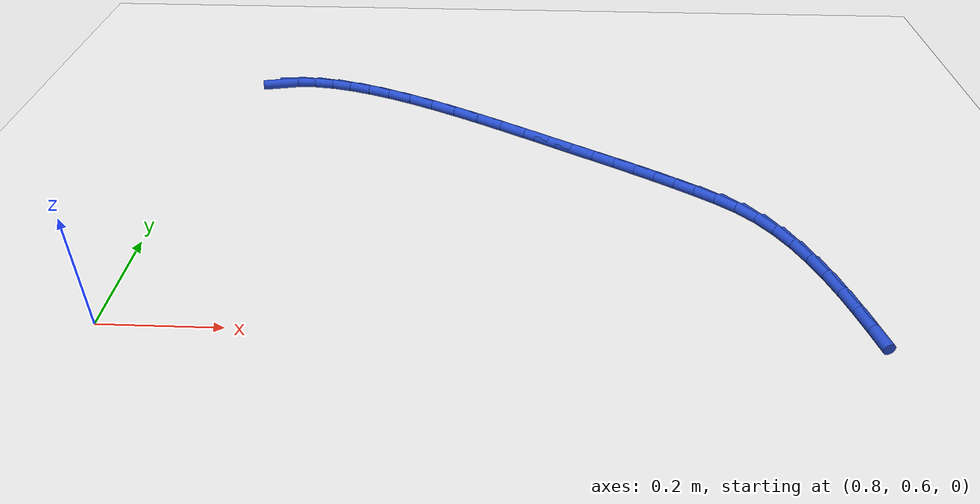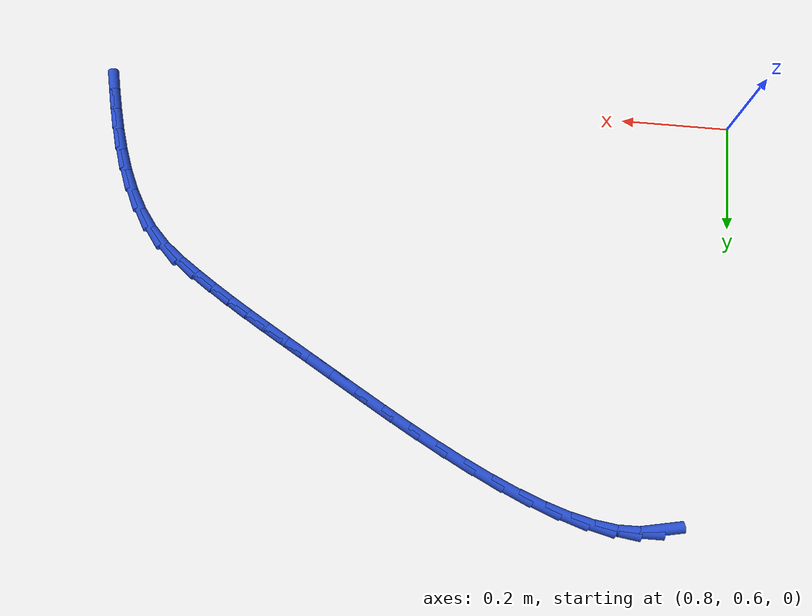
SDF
<sdf version="1.6">
 <world name="default">
  <model name="ground_plane">
   <static>1</static>
   <link name="link">
    <collision name="collision">
     <geometry><plane><normal>0 0 1</normal><size>100 100</size></plane></geometry>
     <surface><friction><ode><mu>100</mu><mu2>50</mu2></ode></friction></surface>
    </collision>
    <visual name="visual">
     <cast_shadows>0</cast_shadows>
     <geometry><plane><normal>0 0 1</normal><size>100 100</size></plane></geometry>
     <material>
      <script><uri>file://media/materials/scripts/gazebo.material</uri><name>Gazebo/WhiteGlow</name></script>
     </material>
    </visual>
   </link>
  </model>
  <model name="line">
   <link name="link_44">
    <pose>0.9161537859186416 1.350804673315645 0.01 0 1.57 0.20019579997016396</pose>
    <collision name="collision">
     <geometry><cylinder><radius>0.01</radius><length>0.08</length></cylinder></geometry>
    </collision>
    <visual name="visual">
     <material>
      <script><name>Gazebo/Blue</name><uri>file://media/materials/scripts/gazebo.material</uri></script>
     </material>
     <geometry><cylinder><radius>0.01</radius><length>0.08</length></cylinder></geometry>
    </visual>
   </link>
   <link name="link_45">
    <pose>0.95073264375769 1.3578212038459103 0.01 0 1.57 0.012287657683713354</pose>
    <collision name="collision">
     <geometry><cylinder><radius>0.01</radius><length>0.08</length></cylinder></geometry>
    </collision>
    <visual name="visual">
     <material>
      <script><name>Gazebo/Blue</name><uri>file://media/materials/scripts/gazebo.material</uri></script>
     </material>
     <geometry><cylinder><radius>0.01</radius><length>0.08</length></cylinder></geometry>
    </visual>
   </link>
   <link name="link_46">
    <pose>0.9891834899235449 1.3582936984615925 0.01 0 1.57 -0.12806278332758594</pose>
    <collision name="collision">
     <geometry><cylinder><radius>0.01</radius><length>0.08</length></cylinder></geometry>
    </collision>
    <visual name="visual">
     <material>
      <script><name>Gazebo/Blue</name><uri>file://media/materials/scripts/gazebo.material</uri></script>
     </material>
     <geometry><cylinder><radius>0.01</radius><length>0.08</length></cylinder></geometry>
    </visual>
   </link>
   <link name="link_47">
    <pose>1.0309468977641985 1.3529159294114659 0.01 0 1.57 -0.23236270712452842</pose>
    <collision name="collision">
     <geometry><cylinder><radius>0.01</radius><length>0.08</length></cylinder></geometry>
    </collision>
    <visual name="visual">
     <material>
      <script><name>Gazebo/Blue</name><uri>file://media/materials/scripts/gazebo.material</uri></script>
     </material>
     <geometry><cylinder><radius>0.01</radius><length>0.08</length></cylinder></geometry>
    </visual>
   </link>
   <link name="link_48">
    <pose>1.0754634406276435 1.3423816689443036 0.01 0 1.57 -0.3106678040880698</pose>
    <collision name="collision">
     <geometry><cylinder><radius>0.01</radius><length>0.08</length></cylinder></geometry>
    </collision>
    <visual name="visual">
     <material>
      <script><name>Gazebo/Blue</name><uri>file://media/materials/scripts/gazebo.material</uri></script>
     </material>
     <geometry><cylinder><radius>0.01</radius><length>0.08</length></cylinder></geometry>
    </visual>
   </link>
   <link name="link_49">
    <pose>1.1221736918618737 1.3273846893088799 0.01 0 1.57 -0.3702672116930253</pose>
    <collision name="collision">
     <geometry><cylinder><radius>0.01</radius><length>0.08</length></cylinder></geometry>
    </collision>
    <visual name="visual">
     <material>
      <script><name>Gazebo/Blue</name><uri>file://media/materials/scripts/gazebo.material</uri></script>
     </material>
     <geometry><cylinder><radius>0.01</radius><length>0.08</length></cylinder></geometry>
    </visual>
   </link>
   <link name="link_50">
    <pose>1.1705182248148807 1.3086187627539687 0.01 0 1.57 -0.41614284398418394</pose>
    <collision name="collision">
     <geometry><cylinder><radius>0.01</radius><length>0.08</length></cylinder></geometry>
    </collision>
    <visual name="visual">
     <material>
      <script><name>Gazebo/Blue</name><uri>file://media/materials/scripts/gazebo.material</uri></script>
     </material>
     <geometry><cylinder><radius>0.01</radius><length>0.08</length></cylinder></geometry>
    </visual>
   </link>
   <link name="link_51">
    <pose>1.2199376128346577 1.286777661528344 0.01 0 1.57 -0.4516425165832345</pose>
    <collision name="collision">
     <geometry><cylinder><radius>0.01</radius><length>0.08</length></cylinder></geometry>
    </collision>
    <visual name="visual">
     <material>
      <script><name>Gazebo/Blue</name><uri>file://media/materials/scripts/gazebo.material</uri></script>
     </material>
     <geometry><cylinder><radius>0.01</radius><length>0.08</length></cylinder></geometry>
    </visual>
   </link>
   <link name="link_52">
    <pose>1.2698724292691974 1.2625551578807788 0.01 0 1.57 -0.4789970460326138</pose>
    <collision name="collision">
     <geometry><cylinder><radius>0.01</radius><length>0.08</length></cylinder></geometry>
    </collision>
    <visual name="visual">
     <material>
      <script><name>Gazebo/Blue</name><uri>file://media/materials/scripts/gazebo.material</uri></script>
     </material>
     <geometry><cylinder><radius>0.01</radius><length>0.08</length></cylinder></geometry>
    </visual>
   </link>
   <link name="link_53">
    <pose>1.3197632474664915 1.2366450240600475 0.01 0 1.57 -0.4996587653629642</pose>
    <collision name="collision">
     <geometry><cylinder><radius>0.01</radius><length>0.08</length></cylinder></geometry>
    </collision>
    <visual name="visual">
     <material>
      <script><name>Gazebo/Blue</name><uri>file://media/materials/scripts/gazebo.material</uri></script>
     </material>
     <geometry><cylinder><radius>0.01</radius><length>0.08</length></cylinder></geometry>
    </visual>
   </link>
   <link name="link_54">
    <pose>1.3690506407745338 1.209741032314924 0.01 0 1.57 -0.5145024851336627</pose>
    <collision name="collision">
     <geometry><cylinder><radius>0.01</radius><length>0.08</length></cylinder></geometry>
    </collision>
    <visual name="visual">
     <material>
      <script><name>Gazebo/Blue</name><uri>file://media/materials/scripts/gazebo.material</uri></script>
     </material>
     <geometry><cylinder><radius>0.01</radius><length>0.08</length></cylinder></geometry>
    </visual>
   </link>
   <link name="link_55">
    <pose>1.4171751825413168 1.1825369548941815 0.01 0 1.57 -0.5239224840192971</pose>
    <collision name="collision">
     <geometry><cylinder><radius>0.01</radius><length>0.08</length></cylinder></geometry>
    </collision>
    <visual name="visual">
     <material>
      <script><name>Gazebo/Blue</name><uri>file://media/materials/scripts/gazebo.material</uri></script>
     </material>
     <geometry><cylinder><radius>0.01</radius><length>0.08</length></cylinder></geometry>
    </visual>
   </link>
   <link name="link_56">
    <pose>1.4635774461148325 1.155726564046595 0.01 0 1.57 -0.5278366400154734</pose>
    <collision name="collision">
     <geometry><cylinder><radius>0.01</radius><length>0.08</length></cylinder></geometry>
    </collision>
    <visual name="visual">
     <material>
      <script><name>Gazebo/Blue</name><uri>file://media/materials/scripts/gazebo.material</uri></script>
     </material>
     <geometry><cylinder><radius>0.01</radius><length>0.08</length></cylinder></geometry>
    </visual>
   </link>
   <link name="link_57">
    <pose>1.5076980048430744 1.1300036320209375 0.01 0 1.57 -0.5265794143272406</pose>
    <collision name="collision">
     <geometry><cylinder><radius>0.01</radius><length>0.08</length></cylinder></geometry>
    </collision>
    <visual name="visual">
     <material>
      <script><name>Gazebo/Blue</name><uri>file://media/materials/scripts/gazebo.material</uri></script>
     </material>
     <geometry><cylinder><radius>0.01</radius><length>0.08</length></cylinder></geometry>
    </visual>
   </link>
   <link name="link_58">
    <pose>1.5490832293368813 1.105945104968783 0.01 0 1.57 -0.5259906616675976</pose>
    <collision name="collision">
     <geometry><cylinder><radius>0.01</radius><length>0.08</length></cylinder></geometry>
    </collision>
    <visual name="visual">
     <material>
      <script><name>Gazebo/Blue</name><uri>file://media/materials/scripts/gazebo.material</uri></script>
     </material>
     <geometry><cylinder><radius>0.01</radius><length>0.08</length></cylinder></geometry>
    </visual>
   </link>
   <link name="link_59">
    <pose>1.5879619960227718 1.0833742754157263 0.01 0 1.57 -0.5290911237635645</pose>
    <collision name="collision">
     <geometry><cylinder><radius>0.01</radius><length>0.08</length></cylinder></geometry>
    </collision>
    <visual name="visual">
     <material>
      <script><name>Gazebo/Blue</name><uri>file://media/materials/scripts/gazebo.material</uri></script>
     </material>
     <geometry><cylinder><radius>0.01</radius><length>0.08</length></cylinder></geometry>
    </visual>
   </link>
   <link name="link_60">
    <pose>1.6248340999521775 1.0618152753537555 0.01 0 1.57 -0.5363395498818827</pose>
    <collision name="collision">
     <geometry><cylinder><radius>0.01</radius><length>0.08</length></cylinder></geometry>
    </collision>
    <visual name="visual">
     <material>
      <script><name>Gazebo/Blue</name><uri>file://media/materials/scripts/gazebo.material</uri></script>
     </material>
     <geometry><cylinder><radius>0.01</radius><length>0.08</length></cylinder></geometry>
    </visual>
   </link>
   <link name="link_61">
    <pose>1.6602000208503986 1.0407914807271699 0.01 0 1.57 -0.547856251935626</pose>
    <collision name="collision">
     <geometry><cylinder><radius>0.01</radius><length>0.08</length></cylinder></geometry>
    </collision>
    <visual name="visual">
     <material>
      <script><name>Gazebo/Blue</name><uri>file://media/materials/scripts/gazebo.material</uri></script>
     </material>
     <geometry><cylinder><radius>0.01</radius><length>0.08</length></cylinder></geometry>
    </visual>
   </link>
   <link name="link_62">
    <pose>1.6945602384427365 1.0198262674802678 0.01 0 1.57 -0.563340637267597</pose>
    <collision name="collision">
     <geometry><cylinder><radius>0.01</radius><length>0.08</length></cylinder></geometry>
    </collision>
    <visual name="visual">
     <material>
      <script><name>Gazebo/Blue</name><uri>file://media/materials/scripts/gazebo.material</uri></script>
     </material>
     <geometry><cylinder><radius>0.01</radius><length>0.08</length></cylinder></geometry>
    </visual>
   </link>
   <link name="link_63">
    <pose>1.7284152324544921 0.998443011557348 0.01 0 1.57 -0.5820704813350454</pose>
    <collision name="collision">
     <geometry><cylinder><radius>0.01</radius><length>0.08</length></cylinder></geometry>
    </collision>
    <visual name="visual">
     <material>
      <script><name>Gazebo/Blue</name><uri>file://media/materials/scripts/gazebo.material</uri></script>
     </material>
     <geometry><cylinder><radius>0.01</radius><length>0.08</length></cylinder></geometry>
    </visual>
   </link>
   <link name="link_64">
    <pose>1.7622654826109647 0.9761650889027098 0.01 0 1.57 -0.6043241248962135</pose>
    <collision name="collision">
     <geometry><cylinder><radius>0.01</radius><length>0.08</length></cylinder></geometry>
    </collision>
    <visual name="visual">
     <material>
      <script><name>Gazebo/Blue</name><uri>file://media/materials/scripts/gazebo.material</uri></script>
     </material>
     <geometry><cylinder><radius>0.01</radius><length>0.08</length></cylinder></geometry>
    </visual>
   </link>
   <link name="link_65">
    <pose>1.796547776417198 0.9524930386943633 0.01 0 1.57 -0.6675204363629734</pose>
    <collision name="collision">
     <geometry><cylinder><radius>0.01</radius><length>0.08</length></cylinder></geometry>
    </collision>
    <visual name="visual">
     <material>
      <script><name>Gazebo/Blue</name><uri>file://media/materials/scripts/gazebo.material</uri></script>
     </material>
     <geometry><cylinder><radius>0.01</radius><length>0.08</length></cylinder></geometry>
    </visual>
   </link>
   <link name="link_66">
    <pose>1.8298315792274327 0.9262578740776198 0.01 0 1.57 -0.8004527332438622</pose>
    <collision name="collision">
     <geometry><cylinder><radius>0.01</radius><length>0.08</length></cylinder></geometry>
    </collision>
    <visual name="visual">
     <material>
      <script><name>Gazebo/Blue</name><uri>file://media/materials/scripts/gazebo.material</uri></script>
     </material>
     <geometry><cylinder><radius>0.01</radius><length>0.08</length></cylinder></geometry>
    </visual>
   </link>
   <link name="link_67">
    <pose>1.8592201055356996 0.8959708907651681 0.01 0 1.57 -0.9324349996659546</pose>
    <collision name="collision">
     <geometry><cylinder><radius>0.01</radius><length>0.08</length></cylinder></geometry>
    </collision>
    <visual name="visual">
     <material>
      <script><name>Gazebo/Blue</name><uri>file://media/materials/scripts/gazebo.material</uri></script>
     </material>
     <geometry><cylinder><radius>0.01</radius><length>0.08</length></cylinder></geometry>
    </visual>
   </link>
   <link name="link_68">
    <pose>1.8844590196599926 0.8619561752817791 0.01 0 1.57 -1.0424098730874778</pose>
    <collision name="collision">
     <geometry><cylinder><radius>0.01</radius><length>0.08</length></cylinder></geometry>
    </collision>
    <visual name="visual">
     <material>
      <script><name>Gazebo/Blue</name><uri>file://media/materials/scripts/gazebo.material</uri></script>
     </material>
     <geometry><cylinder><radius>0.01</radius><length>0.08</length></cylinder></geometry>
    </visual>
   </link>
   <link name="link_69">
    <pose>1.9060179107494193 0.825024556234662 0.01 0 1.57 -1.1314198093086925</pose>
    <collision name="collision">
     <geometry><cylinder><radius>0.01</radius><length>0.08</length></cylinder></geometry>
    </collision>
    <visual name="visual">
     <material>
      <script><name>Gazebo/Blue</name><uri>file://media/materials/scripts/gazebo.material</uri></script>
     </material>
     <geometry><cylinder><radius>0.01</radius><length>0.08</length></cylinder></geometry>
    </visual>
   </link>
   <link name="link_70">
    <pose>1.9243663709442456 0.7859868642421773 0.01 0 1.57 -1.2015732324244608</pose>
    <collision name="collision">
     <geometry><cylinder><radius>0.01</radius><length>0.08</length></cylinder></geometry>
    </collision>
    <visual name="visual">
     <material>
      <script><name>Gazebo/Blue</name><uri>file://media/materials/scripts/gazebo.material</uri></script>
     </material>
     <geometry><cylinder><radius>0.01</radius><length>0.08</length></cylinder></geometry>
    </visual>
   </link>
   <link name="link_71">
    <pose>1.9399739923847379 0.7456539299226854 0.01 0 1.57 -1.2549977677668878</pose>
    <collision name="collision">
     <geometry><cylinder><radius>0.01</radius><length>0.08</length></cylinder></geometry>
    </collision>
    <visual name="visual">
     <material>
      <script><name>Gazebo/Blue</name><uri>file://media/materials/scripts/gazebo.material</uri></script>
     </material>
     <geometry><cylinder><radius>0.01</radius><length>0.08</length></cylinder></geometry>
    </visual>
   </link>
   <link name="link_72">
    <pose>1.9533103672111614 0.7048365838945472 0.01 0 1.57 -1.2939347123748994</pose>
    <collision name="collision">
     <geometry><cylinder><radius>0.01</radius><length>0.08</length></cylinder></geometry>
    </collision>
    <visual name="visual">
     <material>
      <script><name>Gazebo/Blue</name><uri>file://media/materials/scripts/gazebo.material</uri></script>
     </material>
     <geometry><cylinder><radius>0.01</radius><length>0.08</length></cylinder></geometry>
    </visual>
   </link>
   <link name="link_73">
    <pose>1.9648606393434667 0.6641894380447444 0.01 0 1.57 -1.3212524495131095</pose>
    <collision name="collision">
     <geometry><cylinder><radius>0.01</radius><length>0.08</length></cylinder></geometry>
    </collision>
    <visual name="visual">
     <material>
      <script><name>Gazebo/Blue</name><uri>file://media/materials/scripts/gazebo.material</uri></script>
     </material>
     <geometry><cylinder><radius>0.01</radius><length>0.08</length></cylinder></geometry>
    </visual>
   </link>
   <link name="link_74">
    <pose>1.975174276395801 0.6237209681839548 0.01 0 1.57 -1.3367598033457073</pose>
    <collision name="collision">
     <geometry><cylinder><radius>0.01</radius><length>0.08</length></cylinder></geometry>
    </collision>
    <visual name="visual">
     <material>
      <script><name>Gazebo/Blue</name><uri>file://media/materials/scripts/gazebo.material</uri></script>
     </material>
     <geometry><cylinder><radius>0.01</radius><length>0.08</length></cylinder></geometry>
    </visual>
   </link>
  </model>
 </world>
</sdf>
